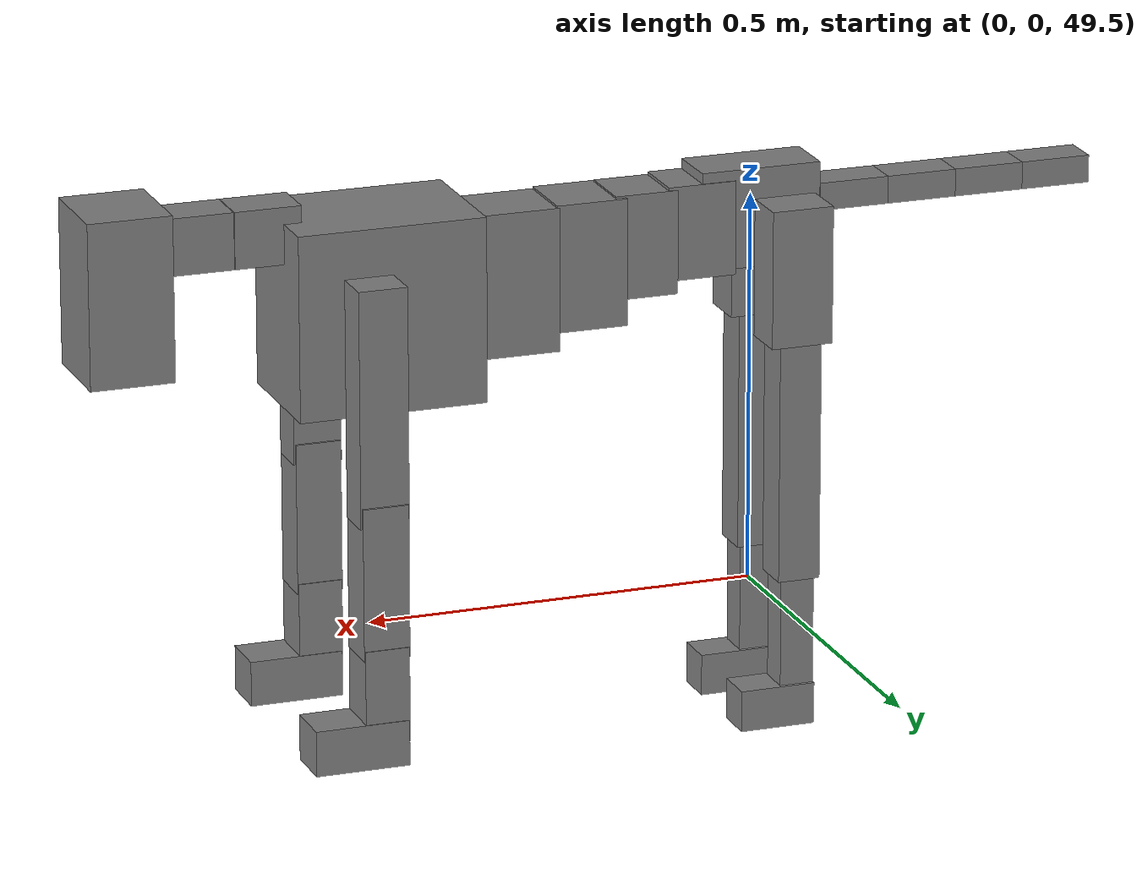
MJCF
<mujoco model="dog">

    <default>
        <joint armature="0.02" stiffness="1" damping="0.2" limited="true"/>
        <geom condim="3" friction="1 0.05 0.05" margin="0.01"/>
        <motor ctrllimited="true" ctrlrange="-1.0 1.0" forcelimited="true" gear="50"/>
    </default>

    <compiler inertiafromgeom="true" angle="radian"/>

    <option timestep="0.016" iterations="50" tolerance="1e-10" solver="Newton" jacobian="dense" cone="pyramidal"/>

    <size nconmax="20000" njmax="60000" nstack="5000000"/>
    <visual>
        <map force="0.1" zfar="30"/>
        <rgba haze="0.15 0.25 0.35 1"/>
        <quality shadowsize="2048"/>
        <global offwidth="800" offheight="800"/>
    </visual>

    <asset>
        <texture type="skybox" builtin="gradient" rgb1="0.3 0.5 0.7" rgb2="0 0 0" width="512" height="512"/>
        <texture name="texplane" type="2d" builtin="checker" rgb1=".2 .3 .4" rgb2=".1 0.15 0.2" width="512" height="512"
                 mark="cross" markrgb=".8 .8 .8"/>
        <texture name="texgeom" type="cube" builtin="flat" mark="cross" width="127" height="1278" rgb1="0.8 0.6 0.4"
                 rgb2="0.8 0.6 0.4" markrgb="1 1 1" random="0.01"/>

        <material name="matplane" reflectance="0.3" texture="texplane" texrepeat="1 1" texuniform="true"/>
        <material name="matgeom" texture="texgeom" texuniform="true" rgba="0.8 0.6 .4 1"/>
    </asset>

    <worldbody>
        <geom name="floor" pos="0 0 0" size="0 0 .25" type="plane" material="matplane" condim="3"/>

        <light directional="false" diffuse=".2 .2 .2" specular="0 0 0" pos="0 0 5" dir="0 0 -1" castshadow="false"/>
        <light mode="targetbodycom" target="torso" directional="false" diffuse=".8 .8 .8" specular="0.3 0.3 0.3"
               pos="0 0 4.0" dir="0 0 -1"/>

        <body name="root" pos="0 0 50">
            <freejoint name="root_1"/>
            <geom type="box" pos="0 0 -0.02" size="0.0774  0.0358  0.063" density="2030"/>

            <body name="spine1" pos="0.054 0 0">
                <joint name="spine1_y" axis="0 1 0" range="0 0.7" limited="true"/>
                <geom type="box" pos="0.02375 0 -0.03" size="0.04375  0.0375  0.05985" density="2030"/>

                <body name="spine2" pos="0.0612 0 0">
                    <joint name="spine2_y" axis="0 1 0" range="-0.15 0.15" limited="true"/>
                    <geom type="box" pos="0.03555  0  -0.04" size="0.04055  0.039  0.06615" density="2030"/>

                    <body name="spine3" pos="0.0730 0 0">
                        <joint name="spine3_y" axis="0 1 0" range="-0.15 0.15" limited="true"/>
                        <geom type="box" pos="0.03555  0  -0.057" size="0.04555  0.0445  0.081" density="2030"/>

                        <body name="spine4" pos="0.0780 0 0">
                            <joint name="spine4_y" axis="0 1 0" range="-0.15 0.15" limited="true"/>
                            <geom type="box" pos="0.05265  0  -0.07" size="0.05265  0.045  0.09135" density="2030"/>

                            <body name="torso" pos="0.1082 0 0">
                                <joint name="torso_y" axis="0 1 0" range="-0.15 0.15" limited="true"/>
                                <geom type="box" pos="0.11925  0  -0.085" size="0.11925  0.085  0.11745"
                                      density="2030"/>

                                <body name="neck1" pos="0.2160  0   0.0180">
                                    <joint name="neck1_y" axis="0 1 0" range="-1.2  -1" limited="true"/>
                                    <geom type="box" pos="0.0423  0  0" size="0.0423  0.03  0.036" density="2325"/>

                                    <body name="neck2" pos="0.0853  0  0">
                                        <joint name="neck2_y" axis="0 1 0" range="0.1  0" limited="true"/>
                                        <geom type="box" pos="0.0423  0  0" size="0.0423  0.03  0.036" density="2325"/>

                                        <body name="head" pos="0.0853  0  0">
                                            <joint name="head_y" axis="0 1 0" range="-0.3  -0.2" limited="true"/>
                                            <geom type="box" pos="0.0531  0  -0.055" size="0.0531  0.06  0.1044"
                                                  density="4030"/>

                                        </body>
                                    </body>
                                </body>

                                <body name="front_shoulder" pos="0.156  0   -0.0480">
                                    <joint name="front_shoulder_y" axis="0 1 0" range="-1 1.5" limited="true"/>
                                    <geom type="box" pos="0 0.13 -0.1233" size="0.0309  0.0264  0.1500" density="1158"/>
                                    <geom type="box" pos="0 -0.13 -0.1233" size="0.0309  0.0264  0.1500"
                                          density="1158"/>

                                    <body name="front_elbow" pos="0  0  -0.2466">
                                        <joint name="front_elbow_y" axis="0 1 0" range="-2 0" limited="true"/>
                                        <geom type="box" pos="0 0.13 -0.0974" size="0.0292  0.0298  0.0974"
                                              density="1081"/>
                                        <geom type="box" pos="0 -0.13 -0.0974" size="0.0292  0.0298  0.0974"
                                              density="1081"/>

                                        <body name="front_wrist" pos="0  0  -0.1948">
                                            <joint name="front_wrist_y" axis="0 1 0" range="-0.2 0" limited="true"/>
                                            <geom type="box" pos="0 0.13 -0.0479" size="0.0282  0.0313  0.0611"
                                                  density="1664"/>
                                            <geom type="box" pos="0 -0.13 -0.0479" size="0.0282  0.0313  0.0611"
                                                  density="1664"/>

                                            <body name="front_finger_end" pos="0  0  -0.0958">
                                                <joint name="front_finger_y" axis="0 1 0" range="-0.4 1"
                                                       limited="true"/>
                                                <geom type="box" pos="0.0326  0.13  -0.0140"
                                                      size="0.0597  0.0326  0.0290" density="1515"/>
                                                <geom type="box" pos="0.0326  -0.13  -0.0140"
                                                      size="0.0597  0.0326  0.0290" density="1515"/>

                                            </body>

                                        </body>
                                    </body>
                                </body>

                            </body>
                        </body>
                    </body>
                </body>
            </body>

            <body name="back_hip" pos="-0.03 0 -0.018">
                <joint name="back_hip_y" axis="0 1 0" range="-1.5 0.3" limited="true"/>
                <geom type="box" pos="0 0.07 -0.0650" size="0.0395  0.0310  0.0878" density="1154"/>
                <geom type="box" pos="0 -0.07 -0.0650" size="0.0395  0.0310  0.0878" density="1154"/>

                <body name="back_knee" pos="0  0  -0.1300">
                    <joint name="back_knee_y" axis="0 1 0" range="0 2.8" limited="true"/>
                    <geom type="box" pos="0 0.07 -0.1565" size="0.0271  0.0267  0.1721" density="1227"/>
                    <geom type="box" pos="0 -0.07 -0.1565" size="0.0271  0.0267  0.1721" density="1227"/>

                    <body name="back_ankle" pos="0  0  -0.3131">
                        <joint name="back_ankle_y" axis="0 1 0" range="-2.2 0" limited="true"/>
                        <geom type="box" pos="0 0.07 -0.0846" size="0.0217  0.0217  0.0959" density="1284"/>
                        <geom type="box" pos="0 -0.07 -0.0846" size="0.0217  0.0217  0.0959" density="1284"/>

                        <body name="back_toe_end" pos="0  0  -0.1692">
                            <joint name="back_toe_y" axis="0 1 0" range="-0.4 1" limited="true"/>
                            <geom type="box" pos="0.0263  0.07  -0.0115" size="0.0483  0.0263  0.0265" density="1515"/>
                            <geom type="box" pos="0.0263  -0.07  -0.0115" size="0.0483  0.0263  0.0265" density="1515"/>

                        </body>
                    </body>
                </body>
            </body>

            <body name="tail1" pos="-0.074 0 -0.006">
                <joint name="tail1_y" axis="0 1 0" range="-0.2 0.2" limited="true"/>
                <geom type="box" pos="-0.0536  0  0" size="0.045  0.025  0.0175" density="1587"/>

                <body name="tail2" pos="-0.09 0 0">
                    <joint name="tail2_y" axis="0 1 0" range="-0.2 0.2" limited="true"/>
                    <geom type="box" pos="-0.0536  0  0" size="0.045  0.025  0.0175" density="1587"/>

                    <body name="tail3" pos="-0.09 0 0">
                        <joint name="tail3_y" axis="0 1 0" range="-0.2 0.2" limited="true"/>
                        <geom type="box" pos="-0.0536  0  0" size="0.045  0.025  0.0175" density="1587"/>

                        <body name="tail4" pos="-0.09 0 0">
                            <joint name="tail4_y" axis="0 1 0" range="-0.2 0.2" limited="true"/>
                            <geom type="box" pos="-0.0536  0  0" size="0.045  0.025  0.0175" density="1587"/>

                        </body>
                    </body>
                </body>
            </body>
        </body>
    </worldbody>

    <actuator>
        <motor joint="spine1_y" forcerange="-150 150     "/>
        <motor joint="spine2_y" forcerange="-150 150     "/>
        <motor joint="spine3_y" forcerange="-150 150     "/>
        <motor joint="spine4_y" forcerange="-150 150     "/>
        <motor joint="torso_y" forcerange="-150 150     "/>
        <motor joint="neck1_y" forcerange="-100 100       "/>
        <motor joint="neck2_y" forcerange="-100 100       "/>
        <motor joint="head_y" forcerange="-150 150       "/>
        <motor joint="front_shoulder_y" forcerange="-139.63 136.49"/>
        <motor joint="front_elbow_y" forcerange="-198.84 117.95"/>
        <motor joint="front_wrist_y" forcerange="-103.39 146.98"/>
        <motor joint="front_finger_y" forcerange="-69.72 64.05"/>
        <motor joint="back_hip_y" forcerange="-277.92 334.76"/>
        <motor joint="back_knee_y" forcerange="-317.53 270.86"/>
        <motor joint="back_angle_y" forcerange="-88.77 158.11"/>
        <motor joint="back_toe_y" forcerange="-98.57 32.07"/>
        <motor joint="tail1_y" forcerange="-50 50     "/>
        <motor joint="tail2_y" forcerange="-50 50     "/>
        <motor joint="tail3_y" forcerange="-50 50     "/>
        <motor joint="tail4_y" forcerange="-50 50     "/>
    </actuator>
</mujoco>
